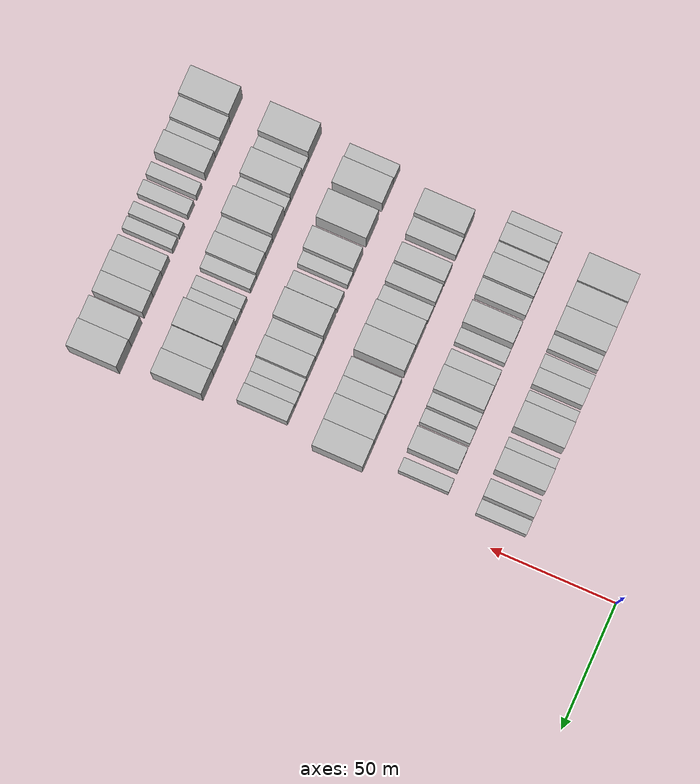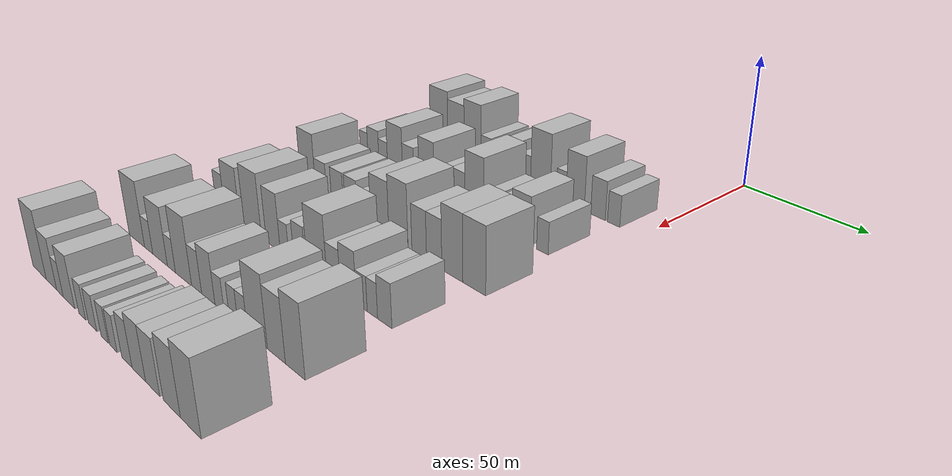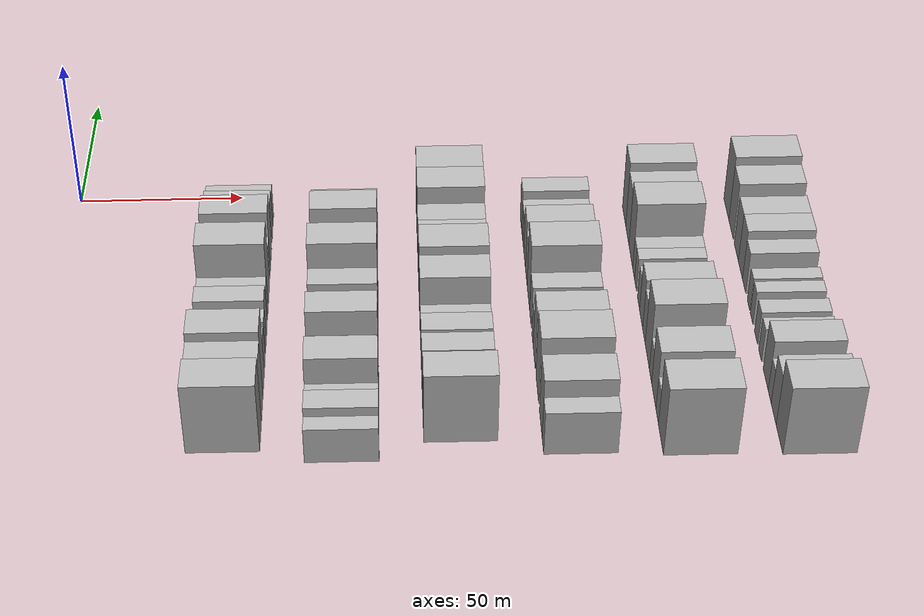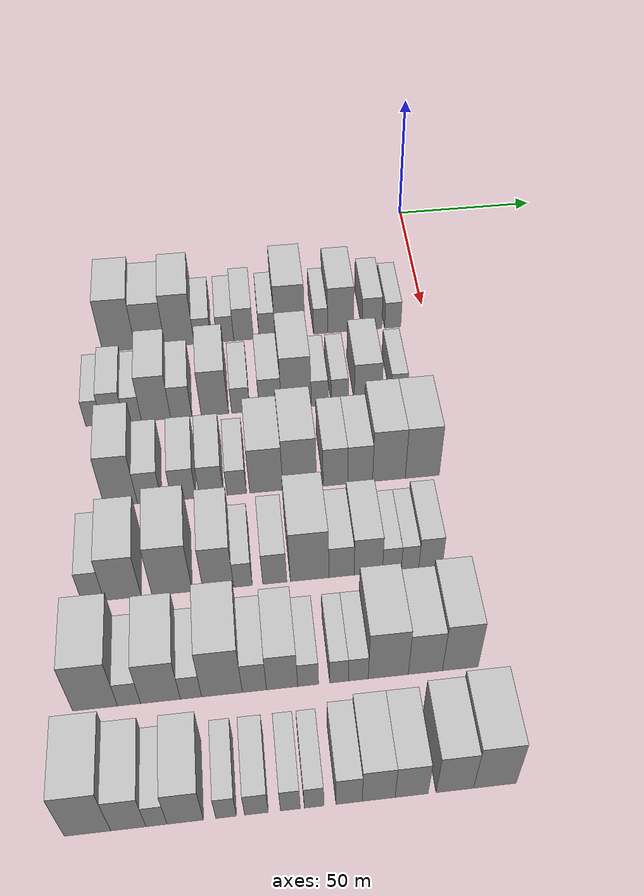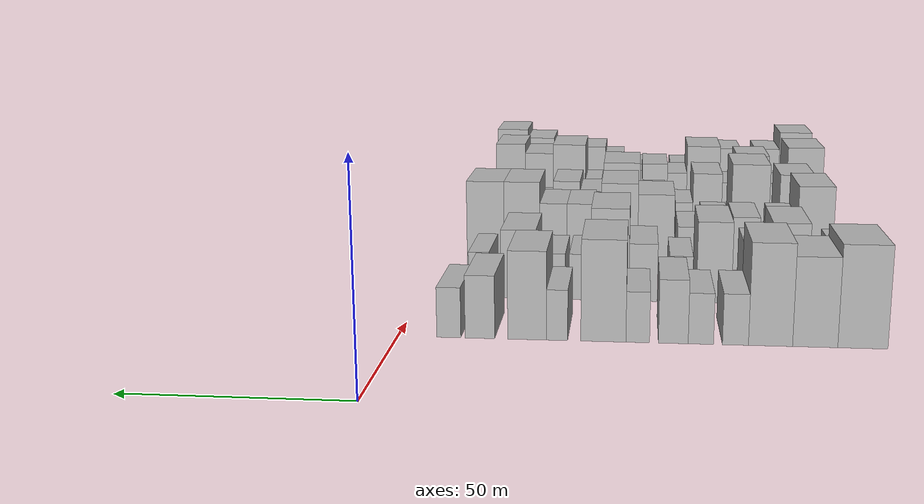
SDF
<sdf version="1.6">
 <world name="default">
  <model name="building_46">
   <static>1</static>
   <pose>50.0000 -105.7286 0 0.000000 0.000000 0.000000</pose>
   <link name="link">
    <pose>0 0 12.00 0 0 0</pose>
    <collision name="collision"><geometry><box><size>20.0000 11.0799 24.0000</size></box></geometry></collision>
    <visual name="visual">
     <cast_shadows>0</cast_shadows>
     <geometry><box><size>20.0000 11.0799 24.0000</size></box></geometry>
     <material>
      <script>
       <uri>model://HANNAS_wall/materials/scripts</uri>
       <uri>model://HANNAS_wall/materials/textures</uri>
       <name>vrc/HANNAS_wall</name>
      </script>
     </material>
    </visual>
   </link>
  </model>
  <model name="building_47">
   <static>1</static>
   <pose>50.0000 -95.1664 0 0.000000 0.000000 0.000000</pose>
   <link name="link">
    <pose>0 0 10.50 0 0 0</pose>
    <collision name="collision"><geometry><box><size>20.0000 10.0445 21.0000</size></box></geometry></collision>
    <visual name="visual">
     <cast_shadows>0</cast_shadows>
     <geometry><box><size>20.0000 10.0445 21.0000</size></box></geometry>
     <material>
      <script>
       <uri>model://HANNAS_wall/materials/scripts</uri>
       <uri>model://HANNAS_wall/materials/textures</uri>
       <name>vrc/HANNAS_wall</name>
      </script>
     </material>
    </visual>
   </link>
  </model>
  <model name="building_48">
   <static>1</static>
   <pose>50.0000 -85.2147 0 0.000000 0.000000 0.000000</pose>
   <link name="link">
    <pose>0 0 12.00 0 0 0</pose>
    <collision name="collision"><geometry><box><size>20.0000 9.8589 24.0000</size></box></geometry></collision>
    <visual name="visual">
     <cast_shadows>0</cast_shadows>
     <geometry><box><size>20.0000 9.8589 24.0000</size></box></geometry>
     <material>
      <script>
       <uri>model://HANNAS_wall/materials/scripts</uri>
       <uri>model://HANNAS_wall/materials/textures</uri>
       <name>vrc/HANNAS_wall</name>
      </script>
     </material>
    </visual>
   </link>
  </model>
  <model name="building_49">
   <static>1</static>
   <pose>50.0000 -77.3720 0 0.000000 0.000000 0.000000</pose>
   <link name="link">
    <pose>0 0 6.00 0 0 0</pose>
    <collision name="collision"><geometry><box><size>20.0000 5.8264 12.0000</size></box></geometry></collision>
    <visual name="visual">
     <cast_shadows>0</cast_shadows>
     <geometry><box><size>20.0000 5.8264 12.0000</size></box></geometry>
     <material>
      <script>
       <uri>model://HANNAS_wall/materials/scripts</uri>
       <uri>model://HANNAS_wall/materials/textures</uri>
       <name>vrc/HANNAS_wall</name>
      </script>
     </material>
    </visual>
   </link>
  </model>
  <model name="building_50">
   <static>1</static>
   <pose>50.0000 -69.5935 0 0.000000 0.000000 0.000000</pose>
   <link name="link">
    <pose>0 0 6.00 0 0 0</pose>
    <collision name="collision"><geometry><box><size>20.0000 5.7306 12.0000</size></box></geometry></collision>
    <visual name="visual">
     <cast_shadows>0</cast_shadows>
     <geometry><box><size>20.0000 5.7306 12.0000</size></box></geometry>
     <material>
      <script>
       <uri>model://HANNAS_wall/materials/scripts</uri>
       <uri>model://HANNAS_wall/materials/textures</uri>
       <name>vrc/HANNAS_wall</name>
      </script>
     </material>
    </visual>
   </link>
  </model>
  <model name="building_51">
   <static>1</static>
   <pose>50.0000 -63.3656 0 0.000000 0.000000 0.000000</pose>
   <link name="link">
    <pose>0 0 7.50 0 0 0</pose>
    <collision name="collision"><geometry><box><size>20.0000 6.7251 15.0000</size></box></geometry></collision>
    <visual name="visual">
     <cast_shadows>0</cast_shadows>
     <geometry><box><size>20.0000 6.7251 15.0000</size></box></geometry>
     <material>
      <script>
       <uri>model://HANNAS_wall/materials/scripts</uri>
       <uri>model://HANNAS_wall/materials/textures</uri>
       <name>vrc/HANNAS_wall</name>
      </script>
     </material>
    </visual>
   </link>
  </model>
  <model name="building_52">
   <static>1</static>
   <pose>50.0000 -55.3044 0 0.000000 0.000000 0.000000</pose>
   <link name="link">
    <pose>0 0 6.00 0 0 0</pose>
    <collision name="collision"><geometry><box><size>20.0000 5.3973 12.0000</size></box></geometry></collision>
    <visual name="visual">
     <cast_shadows>0</cast_shadows>
     <geometry><box><size>20.0000 5.3973 12.0000</size></box></geometry>
     <material>
      <script>
       <uri>model://HANNAS_wall/materials/scripts</uri>
       <uri>model://HANNAS_wall/materials/textures</uri>
       <name>vrc/HANNAS_wall</name>
      </script>
     </material>
    </visual>
   </link>
  </model>
  <model name="building_53">
   <static>1</static>
   <pose>50.0000 -47.4502 0 0.000000 0.000000 0.000000</pose>
   <link name="link">
    <pose>0 0 12.00 0 0 0</pose>
    <collision name="collision"><geometry><box><size>20.0000 10.3111 24.0000</size></box></geometry></collision>
    <visual name="visual">
     <cast_shadows>0</cast_shadows>
     <geometry><box><size>20.0000 10.3111 24.0000</size></box></geometry>
     <material>
      <script>
       <uri>model://HANNAS_wall/materials/scripts</uri>
       <uri>model://HANNAS_wall/materials/textures</uri>
       <name>vrc/HANNAS_wall</name>
      </script>
     </material>
    </visual>
   </link>
  </model>
  <model name="building_54">
   <static>1</static>
   <pose>50.0000 -36.8633 0 0.000000 0.000000 0.000000</pose>
   <link name="link">
    <pose>0 0 6.00 0 0 0</pose>
    <collision name="collision"><geometry><box><size>20.0000 4.8627 12.0000</size></box></geometry></collision>
    <visual name="visual">
     <cast_shadows>0</cast_shadows>
     <geometry><box><size>20.0000 4.8627 12.0000</size></box></geometry>
     <material>
      <script>
       <uri>model://HANNAS_wall/materials/scripts</uri>
       <uri>model://HANNAS_wall/materials/textures</uri>
       <name>vrc/HANNAS_wall</name>
      </script>
     </material>
    </visual>
   </link>
  </model>
  <model name="building_55">
   <static>1</static>
   <pose>50.0000 -29.9581 0 0.000000 0.000000 0.000000</pose>
   <link name="link">
    <pose>0 0 10.50 0 0 0</pose>
    <collision name="collision"><geometry><box><size>20.0000 8.9479 21.0000</size></box></geometry></collision>
    <visual name="visual">
     <cast_shadows>0</cast_shadows>
     <geometry><box><size>20.0000 8.9479 21.0000</size></box></geometry>
     <material>
      <script>
       <uri>model://HANNAS_wall/materials/scripts</uri>
       <uri>model://HANNAS_wall/materials/textures</uri>
       <name>vrc/HANNAS_wall</name>
      </script>
     </material>
    </visual>
   </link>
  </model>
  <model name="building_56">
   <static>1</static>
   <pose>50.0000 -19.0492 0 0.000000 0.000000 0.000000</pose>
   <link name="link">
    <pose>0 0 7.50 0 0 0</pose>
    <collision name="collision"><geometry><box><size>20.0000 6.8700 15.0000</size></box></geometry></collision>
    <visual name="visual">
     <cast_shadows>0</cast_shadows>
     <geometry><box><size>20.0000 6.8700 15.0000</size></box></geometry>
     <material>
      <script>
       <uri>model://HANNAS_wall/materials/scripts</uri>
       <uri>model://HANNAS_wall/materials/textures</uri>
       <name>vrc/HANNAS_wall</name>
      </script>
     </material>
    </visual>
   </link>
  </model>
  <model name="building_57">
   <static>1</static>
   <pose>50.0000 -11.8106 0 0.000000 0.000000 0.000000</pose>
   <link name="link">
    <pose>0 0 6.00 0 0 0</pose>
    <collision name="collision"><geometry><box><size>20.0000 5.6073 12.0000</size></box></geometry></collision>
    <visual name="visual">
     <cast_shadows>0</cast_shadows>
     <geometry><box><size>20.0000 5.6073 12.0000</size></box></geometry>
     <material>
      <script>
       <uri>model://HANNAS_wall/materials/scripts</uri>
       <uri>model://HANNAS_wall/materials/textures</uri>
       <name>vrc/HANNAS_wall</name>
      </script>
     </material>
    </visual>
   </link>
  </model>
  <model name="building_171">
   <static>1</static>
   <pose>82.0000 -113.1906 0 0.000000 0.000000 0.000000</pose>
   <link name="link">
    <pose>0 0 6.00 0 0 0</pose>
    <collision name="collision"><geometry><box><size>20.0000 5.0741 12.0000</size></box></geometry></collision>
    <visual name="visual">
     <cast_shadows>0</cast_shadows>
     <geometry><box><size>20.0000 5.0741 12.0000</size></box></geometry>
     <material>
      <script>
       <uri>model://HANNAS_wall/materials/scripts</uri>
       <uri>model://HANNAS_wall/materials/textures</uri>
       <name>vrc/HANNAS_wall</name>
      </script>
     </material>
    </visual>
   </link>
  </model>
  <model name="building_172">
   <static>1</static>
   <pose>82.0000 -107.1129 0 0.000000 0.000000 0.000000</pose>
   <link name="link">
    <pose>0 0 7.50 0 0 0</pose>
    <collision name="collision"><geometry><box><size>20.0000 7.0812 15.0000</size></box></geometry></collision>
    <visual name="visual">
     <cast_shadows>0</cast_shadows>
     <geometry><box><size>20.0000 7.0812 15.0000</size></box></geometry>
     <material>
      <script>
       <uri>model://HANNAS_wall/materials/scripts</uri>
       <uri>model://HANNAS_wall/materials/textures</uri>
       <name>vrc/HANNAS_wall</name>
      </script>
     </material>
    </visual>
   </link>
  </model>
  <model name="building_173">
   <static>1</static>
   <pose>82.0000 -100.7891 0 0.000000 0.000000 0.000000</pose>
   <link name="link">
    <pose>0 0 6.00 0 0 0</pose>
    <collision name="collision"><geometry><box><size>20.0000 5.5664 12.0000</size></box></geometry></collision>
    <visual name="visual">
     <cast_shadows>0</cast_shadows>
     <geometry><box><size>20.0000 5.5664 12.0000</size></box></geometry>
     <material>
      <script>
       <uri>model://HANNAS_wall/materials/scripts</uri>
       <uri>model://HANNAS_wall/materials/textures</uri>
       <name>vrc/HANNAS_wall</name>
      </script>
     </material>
    </visual>
   </link>
  </model>
  <model name="building_174">
   <static>1</static>
   <pose>82.0000 -93.3521 0 0.000000 0.000000 0.000000</pose>
   <link name="link">
    <pose>0 0 10.50 0 0 0</pose>
    <collision name="collision"><geometry><box><size>20.0000 9.3075 21.0000</size></box></geometry></collision>
    <visual name="visual">
     <cast_shadows>0</cast_shadows>
     <geometry><box><size>20.0000 9.3075 21.0000</size></box></geometry>
     <material>
      <script>
       <uri>model://HANNAS_wall/materials/scripts</uri>
       <uri>model://HANNAS_wall/materials/textures</uri>
       <name>vrc/HANNAS_wall</name>
      </script>
     </material>
    </visual>
   </link>
  </model>
  <model name="building_175">
   <static>1</static>
   <pose>82.0000 -85.2978 0 0.000000 0.000000 0.000000</pose>
   <link name="link">
    <pose>0 0 7.50 0 0 0</pose>
    <collision name="collision"><geometry><box><size>20.0000 6.8011 15.0000</size></box></geometry></collision>
    <visual name="visual">
     <cast_shadows>0</cast_shadows>
     <geometry><box><size>20.0000 6.8011 15.0000</size></box></geometry>
     <material>
      <script>
       <uri>model://HANNAS_wall/materials/scripts</uri>
       <uri>model://HANNAS_wall/materials/textures</uri>
       <name>vrc/HANNAS_wall</name>
      </script>
     </material>
    </visual>
   </link>
  </model>
  <model name="building_176">
   <static>1</static>
   <pose>82.0000 -74.4849 0 0.000000 0.000000 0.000000</pose>
   <link name="link">
    <pose>0 0 10.50 0 0 0</pose>
    <collision name="collision"><geometry><box><size>20.0000 8.8247 21.0000</size></box></geometry></collision>
    <visual name="visual">
     <cast_shadows>0</cast_shadows>
     <geometry><box><size>20.0000 8.8247 21.0000</size></box></geometry>
     <material>
      <script>
       <uri>model://HANNAS_wall/materials/scripts</uri>
       <uri>model://HANNAS_wall/materials/textures</uri>
       <name>vrc/HANNAS_wall</name>
      </script>
     </material>
    </visual>
   </link>
  </model>
  <model name="building_177">
   <static>1</static>
   <pose>82.0000 -66.1263 0 0.000000 0.000000 0.000000</pose>
   <link name="link">
    <pose>0 0 6.00 0 0 0</pose>
    <collision name="collision"><geometry><box><size>20.0000 5.8926 12.0000</size></box></geometry></collision>
    <visual name="visual">
     <cast_shadows>0</cast_shadows>
     <geometry><box><size>20.0000 5.8926 12.0000</size></box></geometry>
     <material>
      <script>
       <uri>model://HANNAS_wall/materials/scripts</uri>
       <uri>model://HANNAS_wall/materials/textures</uri>
       <name>vrc/HANNAS_wall</name>
      </script>
     </material>
    </visual>
   </link>
  </model>
  <model name="building_178">
   <static>1</static>
   <pose>82.0000 -56.5760 0 0.000000 0.000000 0.000000</pose>
   <link name="link">
    <pose>0 0 7.50 0 0 0</pose>
    <collision name="collision"><geometry><box><size>20.0000 7.2081 15.0000</size></box></geometry></collision>
    <visual name="visual">
     <cast_shadows>0</cast_shadows>
     <geometry><box><size>20.0000 7.2081 15.0000</size></box></geometry>
     <material>
      <script>
       <uri>model://HANNAS_wall/materials/scripts</uri>
       <uri>model://HANNAS_wall/materials/textures</uri>
       <name>vrc/HANNAS_wall</name>
      </script>
     </material>
    </visual>
   </link>
  </model>
  <model name="building_179">
   <static>1</static>
   <pose>82.0000 -48.1003 0 0.000000 0.000000 0.000000</pose>
   <link name="link">
    <pose>0 0 12.00 0 0 0</pose>
    <collision name="collision"><geometry><box><size>20.0000 9.7432 24.0000</size></box></geometry></collision>
    <visual name="visual">
     <cast_shadows>0</cast_shadows>
     <geometry><box><size>20.0000 9.7432 24.0000</size></box></geometry>
     <material>
      <script>
       <uri>model://HANNAS_wall/materials/scripts</uri>
       <uri>model://HANNAS_wall/materials/textures</uri>
       <name>vrc/HANNAS_wall</name>
      </script>
     </material>
    </visual>
   </link>
  </model>
  <model name="building_180">
   <static>1</static>
   <pose>82.0000 -40.4837 0 0.000000 0.000000 0.000000</pose>
   <link name="link">
    <pose>0 0 6.00 0 0 0</pose>
    <collision name="collision"><geometry><box><size>20.0000 5.4900 12.0000</size></box></geometry></collision>
    <visual name="visual">
     <cast_shadows>0</cast_shadows>
     <geometry><box><size>20.0000 5.4900 12.0000</size></box></geometry>
     <material>
      <script>
       <uri>model://HANNAS_wall/materials/scripts</uri>
       <uri>model://HANNAS_wall/materials/textures</uri>
       <name>vrc/HANNAS_wall</name>
      </script>
     </material>
    </visual>
   </link>
  </model>
  <model name="building_181">
   <static>1</static>
   <pose>82.0000 -33.9692 0 0.000000 0.000000 0.000000</pose>
   <link name="link">
    <pose>0 0 6.00 0 0 0</pose>
    <collision name="collision"><geometry><box><size>20.0000 5.5391 12.0000</size></box></geometry></collision>
    <visual name="visual">
     <cast_shadows>0</cast_shadows>
     <geometry><box><size>20.0000 5.5391 12.0000</size></box></geometry>
     <material>
      <script>
       <uri>model://HANNAS_wall/materials/scripts</uri>
       <uri>model://HANNAS_wall/materials/textures</uri>
       <name>vrc/HANNAS_wall</name>
      </script>
     </material>
    </visual>
   </link>
  </model>
  <model name="building_182">
   <static>1</static>
   <pose>82.0000 -24.7071 0 0.000000 0.000000 0.000000</pose>
   <link name="link">
    <pose>0 0 9.00 0 0 0</pose>
    <collision name="collision"><geometry><box><size>20.0000 8.9850 18.0000</size></box></geometry></collision>
    <visual name="visual">
     <cast_shadows>0</cast_shadows>
     <geometry><box><size>20.0000 8.9850 18.0000</size></box></geometry>
     <material>
      <script>
       <uri>model://HANNAS_wall/materials/scripts</uri>
       <uri>model://HANNAS_wall/materials/textures</uri>
       <name>vrc/HANNAS_wall</name>
      </script>
     </material>
    </visual>
   </link>
  </model>
  <model name="building_183">
   <static>1</static>
   <pose>82.0000 -14.5454 0 0.000000 0.000000 0.000000</pose>
   <link name="link">
    <pose>0 0 6.00 0 0 0</pose>
    <collision name="collision"><geometry><box><size>20.0000 5.3384 12.0000</size></box></geometry></collision>
    <visual name="visual">
     <cast_shadows>0</cast_shadows>
     <geometry><box><size>20.0000 5.3384 12.0000</size></box></geometry>
     <material>
      <script>
       <uri>model://HANNAS_wall/materials/scripts</uri>
       <uri>model://HANNAS_wall/materials/textures</uri>
       <name>vrc/HANNAS_wall</name>
      </script>
     </material>
    </visual>
   </link>
  </model>
  <model name="building_297">
   <static>1</static>
   <pose>114.0000 -104.0540 0 0.000000 0.000000 0.000000</pose>
   <link name="link">
    <pose>0 0 12.00 0 0 0</pose>
    <collision name="collision"><geometry><box><size>20.0000 9.8715 24.0000</size></box></geometry></collision>
    <visual name="visual">
     <cast_shadows>0</cast_shadows>
     <geometry><box><size>20.0000 9.8715 24.0000</size></box></geometry>
     <material>
      <script>
       <uri>model://HANNAS_wall/materials/scripts</uri>
       <uri>model://HANNAS_wall/materials/textures</uri>
       <name>vrc/HANNAS_wall</name>
      </script>
     </material>
    </visual>
   </link>
  </model>
  <model name="building_298">
   <static>1</static>
   <pose>114.0000 -95.5180 0 0.000000 0.000000 0.000000</pose>
   <link name="link">
    <pose>0 0 7.50 0 0 0</pose>
    <collision name="collision"><geometry><box><size>20.0000 7.2006 15.0000</size></box></geometry></collision>
    <visual name="visual">
     <cast_shadows>0</cast_shadows>
     <geometry><box><size>20.0000 7.2006 15.0000</size></box></geometry>
     <material>
      <script>
       <uri>model://HANNAS_wall/materials/scripts</uri>
       <uri>model://HANNAS_wall/materials/textures</uri>
       <name>vrc/HANNAS_wall</name>
      </script>
     </material>
    </visual>
   </link>
  </model>
  <model name="building_299">
   <static>1</static>
   <pose>114.0000 -85.1818 0 0.000000 0.000000 0.000000</pose>
   <link name="link">
    <pose>0 0 7.50 0 0 0</pose>
    <collision name="collision"><geometry><box><size>20.0000 7.4717 15.0000</size></box></geometry></collision>
    <visual name="visual">
     <cast_shadows>0</cast_shadows>
     <geometry><box><size>20.0000 7.4717 15.0000</size></box></geometry>
     <material>
      <script>
       <uri>model://HANNAS_wall/materials/scripts</uri>
       <uri>model://HANNAS_wall/materials/textures</uri>
       <name>vrc/HANNAS_wall</name>
      </script>
     </material>
    </visual>
   </link>
  </model>
  <model name="building_300">
   <static>1</static>
   <pose>114.0000 -76.7942 0 0.000000 0.000000 0.000000</pose>
   <link name="link">
    <pose>0 0 7.50 0 0 0</pose>
    <collision name="collision"><geometry><box><size>20.0000 7.3036 15.0000</size></box></geometry></collision>
    <visual name="visual">
     <cast_shadows>0</cast_shadows>
     <geometry><box><size>20.0000 7.3036 15.0000</size></box></geometry>
     <material>
      <script>
       <uri>model://HANNAS_wall/materials/scripts</uri>
       <uri>model://HANNAS_wall/materials/textures</uri>
       <name>vrc/HANNAS_wall</name>
      </script>
     </material>
    </visual>
   </link>
  </model>
  <model name="building_301">
   <static>1</static>
   <pose>114.0000 -69.1866 0 0.000000 0.000000 0.000000</pose>
   <link name="link">
    <pose>0 0 6.00 0 0 0</pose>
    <collision name="collision"><geometry><box><size>20.0000 5.9116 12.0000</size></box></geometry></collision>
    <visual name="visual">
     <cast_shadows>0</cast_shadows>
     <geometry><box><size>20.0000 5.9116 12.0000</size></box></geometry>
     <material>
      <script>
       <uri>model://HANNAS_wall/materials/scripts</uri>
       <uri>model://HANNAS_wall/materials/textures</uri>
       <name>vrc/HANNAS_wall</name>
      </script>
     </material>
    </visual>
   </link>
  </model>
  <model name="building_302">
   <static>1</static>
   <pose>114.0000 -60.1741 0 0.000000 0.000000 0.000000</pose>
   <link name="link">
    <pose>0 0 10.50 0 0 0</pose>
    <collision name="collision"><geometry><box><size>20.0000 10.1135 21.0000</size></box></geometry></collision>
    <visual name="visual">
     <cast_shadows>0</cast_shadows>
     <geometry><box><size>20.0000 10.1135 21.0000</size></box></geometry>
     <material>
      <script>
       <uri>model://HANNAS_wall/materials/scripts</uri>
       <uri>model://HANNAS_wall/materials/textures</uri>
       <name>vrc/HANNAS_wall</name>
      </script>
     </material>
    </visual>
   </link>
  </model>
  <model name="building_303">
   <static>1</static>
   <pose>114.0000 -49.9653 0 0.000000 0.000000 0.000000</pose>
   <link name="link">
    <pose>0 0 12.00 0 0 0</pose>
    <collision name="collision"><geometry><box><size>20.0000 10.3042 24.0000</size></box></geometry></collision>
    <visual name="visual">
     <cast_shadows>0</cast_shadows>
     <geometry><box><size>20.0000 10.3042 24.0000</size></box></geometry>
     <material>
      <script>
       <uri>model://HANNAS_wall/materials/scripts</uri>
       <uri>model://HANNAS_wall/materials/textures</uri>
       <name>vrc/HANNAS_wall</name>
      </script>
     </material>
    </visual>
   </link>
  </model>
  <model name="building_304">
   <static>1</static>
   <pose>114.0000 -39.0295 0 0.000000 0.000000 0.000000</pose>
   <link name="link">
    <pose>0 0 9.00 0 0 0</pose>
    <collision name="collision"><geometry><box><size>20.0000 7.5673 18.0000</size></box></geometry></collision>
    <visual name="visual">
     <cast_shadows>0</cast_shadows>
     <geometry><box><size>20.0000 7.5673 18.0000</size></box></geometry>
     <material>
      <script>
       <uri>model://HANNAS_wall/materials/scripts</uri>
       <uri>model://HANNAS_wall/materials/textures</uri>
       <name>vrc/HANNAS_wall</name>
      </script>
     </material>
    </visual>
   </link>
  </model>
  <model name="building_305">
   <static>1</static>
   <pose>114.0000 -31.4142 0 0.000000 0.000000 0.000000</pose>
   <link name="link">
    <pose>0 0 9.00 0 0 0</pose>
    <collision name="collision"><geometry><box><size>20.0000 7.6634 18.0000</size></box></geometry></collision>
    <visual name="visual">
     <cast_shadows>0</cast_shadows>
     <geometry><box><size>20.0000 7.6634 18.0000</size></box></geometry>
     <material>
      <script>
       <uri>model://HANNAS_wall/materials/scripts</uri>
       <uri>model://HANNAS_wall/materials/textures</uri>
       <name>vrc/HANNAS_wall</name>
      </script>
     </material>
    </visual>
   </link>
  </model>
  <model name="building_306">
   <static>1</static>
   <pose>114.0000 -22.5210 0 0.000000 0.000000 0.000000</pose>
   <link name="link">
    <pose>0 0 12.00 0 0 0</pose>
    <collision name="collision"><geometry><box><size>20.0000 10.1229 24.0000</size></box></geometry></collision>
    <visual name="visual">
     <cast_shadows>0</cast_shadows>
     <geometry><box><size>20.0000 10.1229 24.0000</size></box></geometry>
     <material>
      <script>
       <uri>model://HANNAS_wall/materials/scripts</uri>
       <uri>model://HANNAS_wall/materials/textures</uri>
       <name>vrc/HANNAS_wall</name>
      </script>
     </material>
    </visual>
   </link>
  </model>
  <model name="building_307">
   <static>1</static>
   <pose>114.0000 -12.1708 0 0.000000 0.000000 0.000000</pose>
   <link name="link">
    <pose>0 0 12.00 0 0 0</pose>
    <collision name="collision"><geometry><box><size>20.0000 10.5776 24.0000</size></box></geometry></collision>
    <visual name="visual">
     <cast_shadows>0</cast_shadows>
     <geometry><box><size>20.0000 10.5776 24.0000</size></box></geometry>
     <material>
      <script>
       <uri>model://HANNAS_wall/materials/scripts</uri>
       <uri>model://HANNAS_wall/materials/textures</uri>
       <name>vrc/HANNAS_wall</name>
      </script>
     </material>
    </visual>
   </link>
  </model>
  <model name="building_416">
   <static>1</static>
   <pose>146.0000 -111.3438 0 0.000000 0.000000 0.000000</pose>
   <link name="link">
    <pose>0 0 7.50 0 0 0</pose>
    <collision name="collision"><geometry><box><size>20.0000 6.1682 15.0000</size></box></geometry></collision>
    <visual name="visual">
     <cast_shadows>0</cast_shadows>
     <geometry><box><size>20.0000 6.1682 15.0000</size></box></geometry>
     <material>
      <script>
       <uri>model://HANNAS_wall/materials/scripts</uri>
       <uri>model://HANNAS_wall/materials/textures</uri>
       <name>vrc/HANNAS_wall</name>
      </script>
     </material>
    </visual>
   </link>
  </model>
  <model name="building_417">
   <static>1</static>
   <pose>146.0000 -103.0616 0 0.000000 0.000000 0.000000</pose>
   <link name="link">
    <pose>0 0 10.50 0 0 0</pose>
    <collision name="collision"><geometry><box><size>20.0000 10.3961 21.0000</size></box></geometry></collision>
    <visual name="visual">
     <cast_shadows>0</cast_shadows>
     <geometry><box><size>20.0000 10.3961 21.0000</size></box></geometry>
     <material>
      <script>
       <uri>model://HANNAS_wall/materials/scripts</uri>
       <uri>model://HANNAS_wall/materials/textures</uri>
       <name>vrc/HANNAS_wall</name>
      </script>
     </material>
    </visual>
   </link>
  </model>
  <model name="building_418">
   <static>1</static>
   <pose>146.0000 -89.1812 0 0.000000 0.000000 0.000000</pose>
   <link name="link">
    <pose>0 0 12.00 0 0 0</pose>
    <collision name="collision"><geometry><box><size>20.0000 11.3649 24.0000</size></box></geometry></collision>
    <visual name="visual">
     <cast_shadows>0</cast_shadows>
     <geometry><box><size>20.0000 11.3649 24.0000</size></box></geometry>
     <material>
      <script>
       <uri>model://HANNAS_wall/materials/scripts</uri>
       <uri>model://HANNAS_wall/materials/textures</uri>
       <name>vrc/HANNAS_wall</name>
      </script>
     </material>
    </visual>
   </link>
  </model>
  <model name="building_419">
   <static>1</static>
   <pose>146.0000 -76.1378 0 0.000000 0.000000 0.000000</pose>
   <link name="link">
    <pose>0 0 10.50 0 0 0</pose>
    <collision name="collision"><geometry><box><size>20.0000 8.7219 21.0000</size></box></geometry></collision>
    <visual name="visual">
     <cast_shadows>0</cast_shadows>
     <geometry><box><size>20.0000 8.7219 21.0000</size></box></geometry>
     <material>
      <script>
       <uri>model://HANNAS_wall/materials/scripts</uri>
       <uri>model://HANNAS_wall/materials/textures</uri>
       <name>vrc/HANNAS_wall</name>
      </script>
     </material>
    </visual>
   </link>
  </model>
  <model name="building_420">
   <static>1</static>
   <pose>146.0000 -69.1411 0 0.000000 0.000000 0.000000</pose>
   <link name="link">
    <pose>0 0 6.00 0 0 0</pose>
    <collision name="collision"><geometry><box><size>20.0000 5.2715 12.0000</size></box></geometry></collision>
    <visual name="visual">
     <cast_shadows>0</cast_shadows>
     <geometry><box><size>20.0000 5.2715 12.0000</size></box></geometry>
     <material>
      <script>
       <uri>model://HANNAS_wall/materials/scripts</uri>
       <uri>model://HANNAS_wall/materials/textures</uri>
       <name>vrc/HANNAS_wall</name>
      </script>
     </material>
    </visual>
   </link>
  </model>
  <model name="building_421">
   <static>1</static>
   <pose>146.0000 -60.0704 0 0.000000 0.000000 0.000000</pose>
   <link name="link">
    <pose>0 0 7.50 0 0 0</pose>
    <collision name="collision"><geometry><box><size>20.0000 6.8701 15.0000</size></box></geometry></collision>
    <visual name="visual">
     <cast_shadows>0</cast_shadows>
     <geometry><box><size>20.0000 6.8701 15.0000</size></box></geometry>
     <material>
      <script>
       <uri>model://HANNAS_wall/materials/scripts</uri>
       <uri>model://HANNAS_wall/materials/textures</uri>
       <name>vrc/HANNAS_wall</name>
      </script>
     </material>
    </visual>
   </link>
  </model>
  <model name="building_422">
   <static>1</static>
   <pose>146.0000 -50.0986 0 0.000000 0.000000 0.000000</pose>
   <link name="link">
    <pose>0 0 12.00 0 0 0</pose>
    <collision name="collision"><geometry><box><size>20.0000 11.0735 24.0000</size></box></geometry></collision>
    <visual name="visual">
     <cast_shadows>0</cast_shadows>
     <geometry><box><size>20.0000 11.0735 24.0000</size></box></geometry>
     <material>
      <script>
       <uri>model://HANNAS_wall/materials/scripts</uri>
       <uri>model://HANNAS_wall/materials/textures</uri>
       <name>vrc/HANNAS_wall</name>
      </script>
     </material>
    </visual>
   </link>
  </model>
  <model name="building_423">
   <static>1</static>
   <pose>146.0000 -40.9434 0 0.000000 0.000000 0.000000</pose>
   <link name="link">
    <pose>0 0 7.50 0 0 0</pose>
    <collision name="collision"><geometry><box><size>20.0000 7.2370 15.0000</size></box></geometry></collision>
    <visual name="visual">
     <cast_shadows>0</cast_shadows>
     <geometry><box><size>20.0000 7.2370 15.0000</size></box></geometry>
     <material>
      <script>
       <uri>model://HANNAS_wall/materials/scripts</uri>
       <uri>model://HANNAS_wall/materials/textures</uri>
       <name>vrc/HANNAS_wall</name>
      </script>
     </material>
    </visual>
   </link>
  </model>
  <model name="building_424">
   <static>1</static>
   <pose>146.0000 -33.2200 0 0.000000 0.000000 0.000000</pose>
   <link name="link">
    <pose>0 0 9.00 0 0 0</pose>
    <collision name="collision"><geometry><box><size>20.0000 8.2098 18.0000</size></box></geometry></collision>
    <visual name="visual">
     <cast_shadows>0</cast_shadows>
     <geometry><box><size>20.0000 8.2098 18.0000</size></box></geometry>
     <material>
      <script>
       <uri>model://HANNAS_wall/materials/scripts</uri>
       <uri>model://HANNAS_wall/materials/textures</uri>
       <name>vrc/HANNAS_wall</name>
      </script>
     </material>
    </visual>
   </link>
  </model>
  <model name="building_425">
   <static>1</static>
   <pose>146.0000 -26.3870 0 0.000000 0.000000 0.000000</pose>
   <link name="link">
    <pose>0 0 6.00 0 0 0</pose>
    <collision name="collision"><geometry><box><size>20.0000 5.4563 12.0000</size></box></geometry></collision>
    <visual name="visual">
     <cast_shadows>0</cast_shadows>
     <geometry><box><size>20.0000 5.4563 12.0000</size></box></geometry>
     <material>
      <script>
       <uri>model://HANNAS_wall/materials/scripts</uri>
       <uri>model://HANNAS_wall/materials/textures</uri>
       <name>vrc/HANNAS_wall</name>
      </script>
     </material>
    </visual>
   </link>
  </model>
  <model name="building_426">
   <static>1</static>
   <pose>146.0000 -21.1165 0 0.000000 0.000000 0.000000</pose>
   <link name="link">
    <pose>0 0 6.00 0 0 0</pose>
    <collision name="collision"><geometry><box><size>20.0000 5.0845 12.0000</size></box></geometry></collision>
    <visual name="visual">
     <cast_shadows>0</cast_shadows>
     <geometry><box><size>20.0000 5.0845 12.0000</size></box></geometry>
     <material>
      <script>
       <uri>model://HANNAS_wall/materials/scripts</uri>
       <uri>model://HANNAS_wall/materials/textures</uri>
       <name>vrc/HANNAS_wall</name>
      </script>
     </material>
    </visual>
   </link>
  </model>
  <model name="building_427">
   <static>1</static>
   <pose>146.0000 -15.1455 0 0.000000 0.000000 0.000000</pose>
   <link name="link">
    <pose>0 0 7.50 0 0 0</pose>
    <collision name="collision"><geometry><box><size>20.0000 6.8576 15.0000</size></box></geometry></collision>
    <visual name="visual">
     <cast_shadows>0</cast_shadows>
     <geometry><box><size>20.0000 6.8576 15.0000</size></box></geometry>
     <material>
      <script>
       <uri>model://HANNAS_wall/materials/scripts</uri>
       <uri>model://HANNAS_wall/materials/textures</uri>
       <name>vrc/HANNAS_wall</name>
      </script>
     </material>
    </visual>
   </link>
  </model>
  <model name="building_537">
   <static>1</static>
   <pose>178.0000 -109.7980 0 0.000000 0.000000 0.000000</pose>
   <link name="link">
    <pose>0 0 12.00 0 0 0</pose>
    <collision name="collision"><geometry><box><size>20.0000 11.6767 24.0000</size></box></geometry></collision>
    <visual name="visual">
     <cast_shadows>0</cast_shadows>
     <geometry><box><size>20.0000 11.6767 24.0000</size></box></geometry>
     <material>
      <script>
       <uri>model://HANNAS_wall/materials/scripts</uri>
       <uri>model://HANNAS_wall/materials/textures</uri>
       <name>vrc/HANNAS_wall</name>
      </script>
     </material>
    </visual>
   </link>
  </model>
  <model name="building_538">
   <static>1</static>
   <pose>178.0000 -100.9630 0 0.000000 0.000000 0.000000</pose>
   <link name="link">
    <pose>0 0 6.00 0 0 0</pose>
    <collision name="collision"><geometry><box><size>20.0000 5.9931 12.0000</size></box></geometry></collision>
    <visual name="visual">
     <cast_shadows>0</cast_shadows>
     <geometry><box><size>20.0000 5.9931 12.0000</size></box></geometry>
     <material>
      <script>
       <uri>model://HANNAS_wall/materials/scripts</uri>
       <uri>model://HANNAS_wall/materials/textures</uri>
       <name>vrc/HANNAS_wall</name>
      </script>
     </material>
    </visual>
   </link>
  </model>
  <model name="building_539">
   <static>1</static>
   <pose>178.0000 -92.7435 0 0.000000 0.000000 0.000000</pose>
   <link name="link">
    <pose>0 0 10.50 0 0 0</pose>
    <collision name="collision"><geometry><box><size>20.0000 10.4459 21.0000</size></box></geometry></collision>
    <visual name="visual">
     <cast_shadows>0</cast_shadows>
     <geometry><box><size>20.0000 10.4459 21.0000</size></box></geometry>
     <material>
      <script>
       <uri>model://HANNAS_wall/materials/scripts</uri>
       <uri>model://HANNAS_wall/materials/textures</uri>
       <name>vrc/HANNAS_wall</name>
      </script>
     </material>
    </visual>
   </link>
  </model>
  <model name="building_540">
   <static>1</static>
   <pose>178.0000 -84.7406 0 0.000000 0.000000 0.000000</pose>
   <link name="link">
    <pose>0 0 6.00 0 0 0</pose>
    <collision name="collision"><geometry><box><size>20.0000 5.5600 12.0000</size></box></geometry></collision>
    <visual name="visual">
     <cast_shadows>0</cast_shadows>
     <geometry><box><size>20.0000 5.5600 12.0000</size></box></geometry>
     <material>
      <script>
       <uri>model://HANNAS_wall/materials/scripts</uri>
       <uri>model://HANNAS_wall/materials/textures</uri>
       <name>vrc/HANNAS_wall</name>
      </script>
     </material>
    </visual>
   </link>
  </model>
  <model name="building_541">
   <static>1</static>
   <pose>178.0000 -76.5709 0 0.000000 0.000000 0.000000</pose>
   <link name="link">
    <pose>0 0 12.00 0 0 0</pose>
    <collision name="collision"><geometry><box><size>20.0000 10.7793 24.0000</size></box></geometry></collision>
    <visual name="visual">
     <cast_shadows>0</cast_shadows>
     <geometry><box><size>20.0000 10.7793 24.0000</size></box></geometry>
     <material>
      <script>
       <uri>model://HANNAS_wall/materials/scripts</uri>
       <uri>model://HANNAS_wall/materials/textures</uri>
       <name>vrc/HANNAS_wall</name>
      </script>
     </material>
    </visual>
   </link>
  </model>
  <model name="building_542">
   <static>1</static>
   <pose>178.0000 -67.9616 0 0.000000 0.000000 0.000000</pose>
   <link name="link">
    <pose>0 0 7.50 0 0 0</pose>
    <collision name="collision"><geometry><box><size>20.0000 6.4393 15.0000</size></box></geometry></collision>
    <visual name="visual">
     <cast_shadows>0</cast_shadows>
     <geometry><box><size>20.0000 6.4393 15.0000</size></box></geometry>
     <material>
      <script>
       <uri>model://HANNAS_wall/materials/scripts</uri>
       <uri>model://HANNAS_wall/materials/textures</uri>
       <name>vrc/HANNAS_wall</name>
      </script>
     </material>
    </visual>
   </link>
  </model>
  <model name="building_543">
   <static>1</static>
   <pose>178.0000 -60.5988 0 0.000000 0.000000 0.000000</pose>
   <link name="link">
    <pose>0 0 9.00 0 0 0</pose>
    <collision name="collision"><geometry><box><size>20.0000 8.2863 18.0000</size></box></geometry></collision>
    <visual name="visual">
     <cast_shadows>0</cast_shadows>
     <geometry><box><size>20.0000 8.2863 18.0000</size></box></geometry>
     <material>
      <script>
       <uri>model://HANNAS_wall/materials/scripts</uri>
       <uri>model://HANNAS_wall/materials/textures</uri>
       <name>vrc/HANNAS_wall</name>
      </script>
     </material>
    </visual>
   </link>
  </model>
  <model name="building_544">
   <static>1</static>
   <pose>178.0000 -53.6658 0 0.000000 0.000000 0.000000</pose>
   <link name="link">
    <pose>0 0 6.00 0 0 0</pose>
    <collision name="collision"><geometry><box><size>20.0000 5.5797 12.0000</size></box></geometry></collision>
    <visual name="visual">
     <cast_shadows>0</cast_shadows>
     <geometry><box><size>20.0000 5.5797 12.0000</size></box></geometry>
     <material>
      <script>
       <uri>model://HANNAS_wall/materials/scripts</uri>
       <uri>model://HANNAS_wall/materials/textures</uri>
       <name>vrc/HANNAS_wall</name>
      </script>
     </material>
    </visual>
   </link>
  </model>
  <model name="building_545">
   <static>1</static>
   <pose>178.0000 -45.3787 0 0.000000 0.000000 0.000000</pose>
   <link name="link">
    <pose>0 0 6.00 0 0 0</pose>
    <collision name="collision"><geometry><box><size>20.0000 4.9944 12.0000</size></box></geometry></collision>
    <visual name="visual">
     <cast_shadows>0</cast_shadows>
     <geometry><box><size>20.0000 4.9944 12.0000</size></box></geometry>
     <material>
      <script>
       <uri>model://HANNAS_wall/materials/scripts</uri>
       <uri>model://HANNAS_wall/materials/textures</uri>
       <name>vrc/HANNAS_wall</name>
      </script>
     </material>
    </visual>
   </link>
  </model>
  <model name="building_546">
   <static>1</static>
   <pose>178.0000 -40.1972 0 0.000000 0.000000 0.000000</pose>
   <link name="link">
    <pose>0 0 6.00 0 0 0</pose>
    <collision name="collision"><geometry><box><size>20.0000 5.3687 12.0000</size></box></geometry></collision>
    <visual name="visual">
     <cast_shadows>0</cast_shadows>
     <geometry><box><size>20.0000 5.3687 12.0000</size></box></geometry>
     <material>
      <script>
       <uri>model://HANNAS_wall/materials/scripts</uri>
       <uri>model://HANNAS_wall/materials/textures</uri>
       <name>vrc/HANNAS_wall</name>
      </script>
     </material>
    </visual>
   </link>
  </model>
  <model name="building_547">
   <static>1</static>
   <pose>178.0000 -32.1085 0 0.000000 0.000000 0.000000</pose>
   <link name="link">
    <pose>0 0 12.00 0 0 0</pose>
    <collision name="collision"><geometry><box><size>20.0000 10.8087 24.0000</size></box></geometry></collision>
    <visual name="visual">
     <cast_shadows>0</cast_shadows>
     <geometry><box><size>20.0000 10.8087 24.0000</size></box></geometry>
     <material>
      <script>
       <uri>model://HANNAS_wall/materials/scripts</uri>
       <uri>model://HANNAS_wall/materials/textures</uri>
       <name>vrc/HANNAS_wall</name>
      </script>
     </material>
    </visual>
   </link>
  </model>
  <model name="building_548">
   <static>1</static>
   <pose>178.0000 -22.0569 0 0.000000 0.000000 0.000000</pose>
   <link name="link">
    <pose>0 0 10.50 0 0 0</pose>
    <collision name="collision"><geometry><box><size>20.0000 9.2944 21.0000</size></box></geometry></collision>
    <visual name="visual">
     <cast_shadows>0</cast_shadows>
     <geometry><box><size>20.0000 9.2944 21.0000</size></box></geometry>
     <material>
      <script>
       <uri>model://HANNAS_wall/materials/scripts</uri>
       <uri>model://HANNAS_wall/materials/textures</uri>
       <name>vrc/HANNAS_wall</name>
      </script>
     </material>
    </visual>
   </link>
  </model>
  <model name="building_549">
   <static>1</static>
   <pose>178.0000 -12.5470 0 0.000000 0.000000 0.000000</pose>
   <link name="link">
    <pose>0 0 12.00 0 0 0</pose>
    <collision name="collision"><geometry><box><size>20.0000 9.7255 24.0000</size></box></geometry></collision>
    <visual name="visual">
     <cast_shadows>0</cast_shadows>
     <geometry><box><size>20.0000 9.7255 24.0000</size></box></geometry>
     <material>
      <script>
       <uri>model://HANNAS_wall/materials/scripts</uri>
       <uri>model://HANNAS_wall/materials/textures</uri>
       <name>vrc/HANNAS_wall</name>
      </script>
     </material>
    </visual>
   </link>
  </model>
  <model name="building_657">
   <static>1</static>
   <pose>210.0000 -110.6421 0 0.000000 0.000000 0.000000</pose>
   <link name="link">
    <pose>0 0 12.00 0 0 0</pose>
    <collision name="collision"><geometry><box><size>20.0000 11.1570 24.0000</size></box></geometry></collision>
    <visual name="visual">
     <cast_shadows>0</cast_shadows>
     <geometry><box><size>20.0000 11.1570 24.0000</size></box></geometry>
     <material>
      <script>
       <uri>model://HANNAS_wall/materials/scripts</uri>
       <uri>model://HANNAS_wall/materials/textures</uri>
       <name>vrc/HANNAS_wall</name>
      </script>
     </material>
    </visual>
   </link>
  </model>
  <model name="building_658">
   <static>1</static>
   <pose>210.0000 -100.8040 0 0.000000 0.000000 0.000000</pose>
   <link name="link">
    <pose>0 0 9.00 0 0 0</pose>
    <collision name="collision"><geometry><box><size>20.0000 8.5191 18.0000</size></box></geometry></collision>
    <visual name="visual">
     <cast_shadows>0</cast_shadows>
     <geometry><box><size>20.0000 8.5191 18.0000</size></box></geometry>
     <material>
      <script>
       <uri>model://HANNAS_wall/materials/scripts</uri>
       <uri>model://HANNAS_wall/materials/textures</uri>
       <name>vrc/HANNAS_wall</name>
      </script>
     </material>
    </visual>
   </link>
  </model>
  <model name="building_659">
   <static>1</static>
   <pose>210.0000 -93.9712 0 0.000000 0.000000 0.000000</pose>
   <link name="link">
    <pose>0 0 6.00 0 0 0</pose>
    <collision name="collision"><geometry><box><size>20.0000 5.1465 12.0000</size></box></geometry></collision>
    <visual name="visual">
     <cast_shadows>0</cast_shadows>
     <geometry><box><size>20.0000 5.1465 12.0000</size></box></geometry>
     <material>
      <script>
       <uri>model://HANNAS_wall/materials/scripts</uri>
       <uri>model://HANNAS_wall/materials/textures</uri>
       <name>vrc/HANNAS_wall</name>
      </script>
     </material>
    </visual>
   </link>
  </model>
  <model name="building_660">
   <static>1</static>
   <pose>210.0000 -86.9612 0 0.000000 0.000000 0.000000</pose>
   <link name="link">
    <pose>0 0 9.00 0 0 0</pose>
    <collision name="collision"><geometry><box><size>20.0000 8.8737 18.0000</size></box></geometry></collision>
    <visual name="visual">
     <cast_shadows>0</cast_shadows>
     <geometry><box><size>20.0000 8.8737 18.0000</size></box></geometry>
     <material>
      <script>
       <uri>model://HANNAS_wall/materials/scripts</uri>
       <uri>model://HANNAS_wall/materials/textures</uri>
       <name>vrc/HANNAS_wall</name>
      </script>
     </material>
    </visual>
   </link>
  </model>
  <model name="building_661">
   <static>1</static>
   <pose>210.0000 -76.9845 0 0.000000 0.000000 0.000000</pose>
   <link name="link">
    <pose>0 0 6.00 0 0 0</pose>
    <collision name="collision"><geometry><box><size>20.0000 5.0797 12.0000</size></box></geometry></collision>
    <visual name="visual">
     <cast_shadows>0</cast_shadows>
     <geometry><box><size>20.0000 5.0797 12.0000</size></box></geometry>
     <material>
      <script>
       <uri>model://HANNAS_wall/materials/scripts</uri>
       <uri>model://HANNAS_wall/materials/textures</uri>
       <name>vrc/HANNAS_wall</name>
      </script>
     </material>
    </visual>
   </link>
  </model>
  <model name="building_662">
   <static>1</static>
   <pose>210.0000 -69.5322 0 0.000000 0.000000 0.000000</pose>
   <link name="link">
    <pose>0 0 6.00 0 0 0</pose>
    <collision name="collision"><geometry><box><size>20.0000 5.8248 12.0000</size></box></geometry></collision>
    <visual name="visual">
     <cast_shadows>0</cast_shadows>
     <geometry><box><size>20.0000 5.8248 12.0000</size></box></geometry>
     <material>
      <script>
       <uri>model://HANNAS_wall/materials/scripts</uri>
       <uri>model://HANNAS_wall/materials/textures</uri>
       <name>vrc/HANNAS_wall</name>
      </script>
     </material>
    </visual>
   </link>
  </model>
  <model name="building_663">
   <static>1</static>
   <pose>210.0000 -61.1664 0 0.000000 0.000000 0.000000</pose>
   <link name="link">
    <pose>0 0 6.00 0 0 0</pose>
    <collision name="collision"><geometry><box><size>20.0000 4.9070 12.0000</size></box></geometry></collision>
    <visual name="visual">
     <cast_shadows>0</cast_shadows>
     <geometry><box><size>20.0000 4.9070 12.0000</size></box></geometry>
     <material>
      <script>
       <uri>model://HANNAS_wall/materials/scripts</uri>
       <uri>model://HANNAS_wall/materials/textures</uri>
       <name>vrc/HANNAS_wall</name>
      </script>
     </material>
    </visual>
   </link>
  </model>
  <model name="building_664">
   <static>1</static>
   <pose>210.0000 -55.2925 0 0.000000 0.000000 0.000000</pose>
   <link name="link">
    <pose>0 0 6.00 0 0 0</pose>
    <collision name="collision"><geometry><box><size>20.0000 4.8407 12.0000</size></box></geometry></collision>
    <visual name="visual">
     <cast_shadows>0</cast_shadows>
     <geometry><box><size>20.0000 4.8407 12.0000</size></box></geometry>
     <material>
      <script>
       <uri>model://HANNAS_wall/materials/scripts</uri>
       <uri>model://HANNAS_wall/materials/textures</uri>
       <name>vrc/HANNAS_wall</name>
      </script>
     </material>
    </visual>
   </link>
  </model>
  <model name="building_665">
   <static>1</static>
   <pose>210.0000 -46.6128 0 0.000000 0.000000 0.000000</pose>
   <link name="link">
    <pose>0 0 7.50 0 0 0</pose>
    <collision name="collision"><geometry><box><size>20.0000 6.5187 15.0000</size></box></geometry></collision>
    <visual name="visual">
     <cast_shadows>0</cast_shadows>
     <geometry><box><size>20.0000 6.5187 15.0000</size></box></geometry>
     <material>
      <script>
       <uri>model://HANNAS_wall/materials/scripts</uri>
       <uri>model://HANNAS_wall/materials/textures</uri>
       <name>vrc/HANNAS_wall</name>
      </script>
     </material>
    </visual>
   </link>
  </model>
  <model name="building_666">
   <static>1</static>
   <pose>210.0000 -39.2254 0 0.000000 0.000000 0.000000</pose>
   <link name="link">
    <pose>0 0 9.00 0 0 0</pose>
    <collision name="collision"><geometry><box><size>20.0000 8.2562 18.0000</size></box></geometry></collision>
    <visual name="visual">
     <cast_shadows>0</cast_shadows>
     <geometry><box><size>20.0000 8.2562 18.0000</size></box></geometry>
     <material>
      <script>
       <uri>model://HANNAS_wall/materials/scripts</uri>
       <uri>model://HANNAS_wall/materials/textures</uri>
       <name>vrc/HANNAS_wall</name>
      </script>
     </material>
    </visual>
   </link>
  </model>
  <model name="building_667">
   <static>1</static>
   <pose>210.0000 -30.9482 0 0.000000 0.000000 0.000000</pose>
   <link name="link">
    <pose>0 0 9.00 0 0 0</pose>
    <collision name="collision"><geometry><box><size>20.0000 8.2982 18.0000</size></box></geometry></collision>
    <visual name="visual">
     <cast_shadows>0</cast_shadows>
     <geometry><box><size>20.0000 8.2982 18.0000</size></box></geometry>
     <material>
      <script>
       <uri>model://HANNAS_wall/materials/scripts</uri>
       <uri>model://HANNAS_wall/materials/textures</uri>
       <name>vrc/HANNAS_wall</name>
      </script>
     </material>
    </visual>
   </link>
  </model>
  <model name="building_668">
   <static>1</static>
   <pose>210.0000 -20.0552 0 0.000000 0.000000 0.000000</pose>
   <link name="link">
    <pose>0 0 10.50 0 0 0</pose>
    <collision name="collision"><geometry><box><size>20.0000 9.4879 21.0000</size></box></geometry></collision>
    <visual name="visual">
     <cast_shadows>0</cast_shadows>
     <geometry><box><size>20.0000 9.4879 21.0000</size></box></geometry>
     <material>
      <script>
       <uri>model://HANNAS_wall/materials/scripts</uri>
       <uri>model://HANNAS_wall/materials/textures</uri>
       <name>vrc/HANNAS_wall</name>
      </script>
     </material>
    </visual>
   </link>
  </model>
  <model name="building_669">
   <static>1</static>
   <pose>210.0000 -9.8778 0 0.000000 0.000000 0.000000</pose>
   <link name="link">
    <pose>0 0 12.00 0 0 0</pose>
    <collision name="collision"><geometry><box><size>20.0000 10.8668 24.0000</size></box></geometry></collision>
    <visual name="visual">
     <cast_shadows>0</cast_shadows>
     <geometry><box><size>20.0000 10.8668 24.0000</size></box></geometry>
     <material>
      <script>
       <uri>model://HANNAS_wall/materials/scripts</uri>
       <uri>model://HANNAS_wall/materials/textures</uri>
       <name>vrc/HANNAS_wall</name>
      </script>
     </material>
    </visual>
   </link>
  </model>
 </world>
</sdf>
